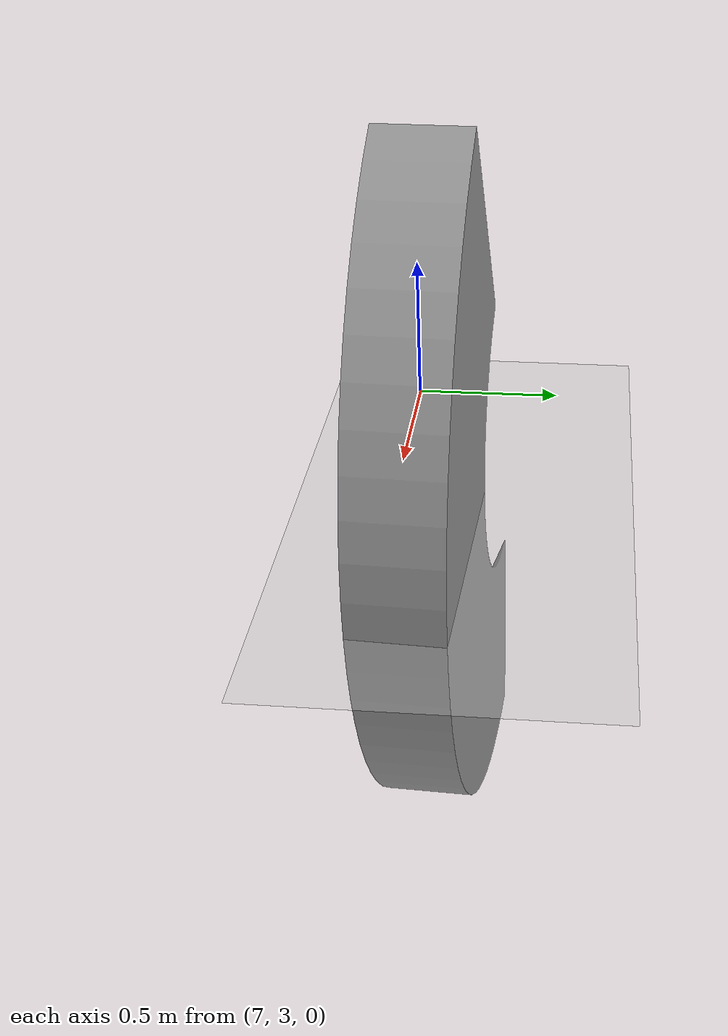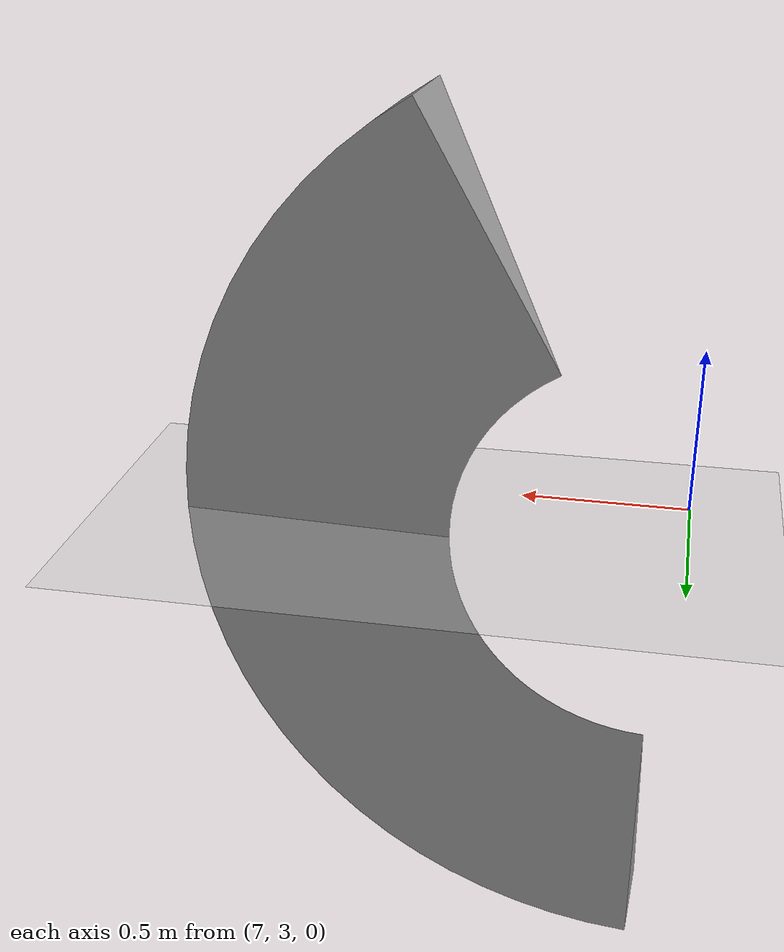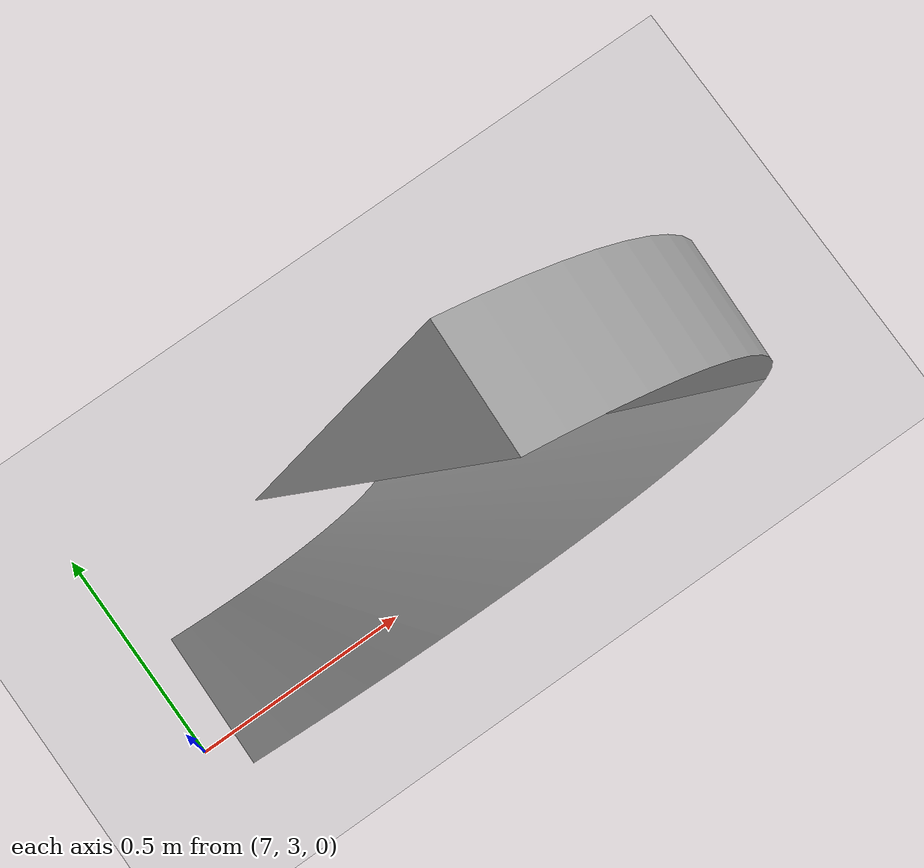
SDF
<sdf version="1.7">
 <world name="default">
  <model name="ground_plane">
   <static>1</static>
   <link name="link">
    <collision name="collision">
     <geometry><plane><normal>0 0 1</normal><size>100 100</size></plane></geometry>
     <surface><friction><ode><mu>0.7</mu><mu2>0.7</mu2></ode></friction></surface>
    </collision>
    <visual name="visual">
     <cast_shadows>0</cast_shadows>
     <geometry><plane><normal>0 0 1</normal><size>100 100</size></plane></geometry>
     <material>
      <script><uri>file://media/materials/scripts/gazebo.material</uri><name>Gazebo/Grey</name></script>
     </material>
    </visual>
   </link>
  </model>
  <model name="slope">
   <static>1</static>
   <link name="link">
    <collision name="collision">
     <geometry><mesh><uri>model://slope/slope.STL</uri></mesh></geometry>
     <surface>
      <contact><collide_bitmask>65535</collide_bitmask></contact>
      <friction><ode><mu>100</mu><mu2>50</mu2></ode></friction>
     </surface>
    </collision>
    <visual name="visual">
     <cast_shadows>0</cast_shadows>
     <geometry><mesh><uri>model://slope/slope.STL</uri></mesh></geometry>
     <material>
      <script><uri>file://media/materials/scripts/gazebo.material</uri><name>Gazebo/Grey</name></script>
     </material>
    </visual>
   </link>
   <pose>7.07467 3.3184 0 -0.008694 -0.000659 3.09227</pose>
  </model>
  <light name="sun" type="directional">
   <pose>0 0 10 0 -0 0</pose>
   <diffuse>0.8 0.8 0.8 1</diffuse>
   <specular>0.1 0.1 0.1 1</specular>
   <attenuation>
    <range>1000</range>
    <constant>0.9</constant>
    <linear>0.01</linear>
    <quadratic>0.001</quadratic>
   </attenuation>
   <direction>-0.5 0.5 -1</direction>
   <spot><inner_angle>0</inner_angle><outer_angle>0</outer_angle><falloff>0</falloff></spot>
  </light>
  <gravity>0 0 -9.81</gravity>
  <magnetic_field>6e-06 2.3e-05 -4.2e-05</magnetic_field>
  <atmosphere type="adiabatic"/>
  <physics name="default_physics" default="0" type="ode">
   <max_step_size>0.001</max_step_size>
   <real_time_factor>1</real_time_factor>
   <real_time_update_rate>1000</real_time_update_rate>
  </physics>
  <scene><ambient>0.4 0.4 0.4 1</ambient><background>0.7 0.7 0.7 1</background><shadows>1</shadows></scene>
  <spherical_coordinates>
   <surface_model>EARTH_WGS84</surface_model>
   <latitude_deg>0</latitude_deg>
   <longitude_deg>0</longitude_deg>
   <elevation>0</elevation>
   <heading_deg>0</heading_deg>
  </spherical_coordinates>
 </world>
</sdf>
